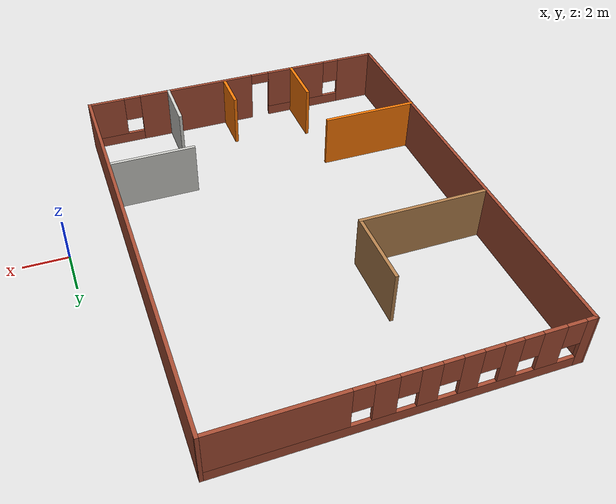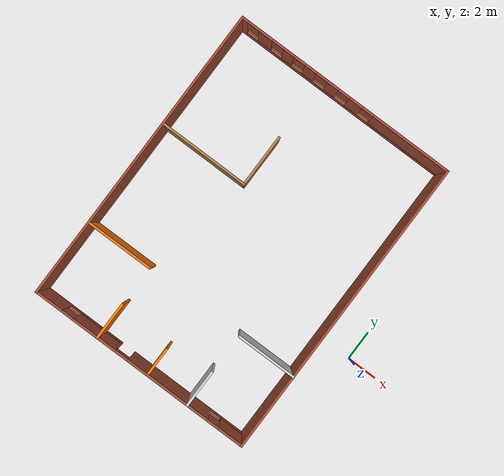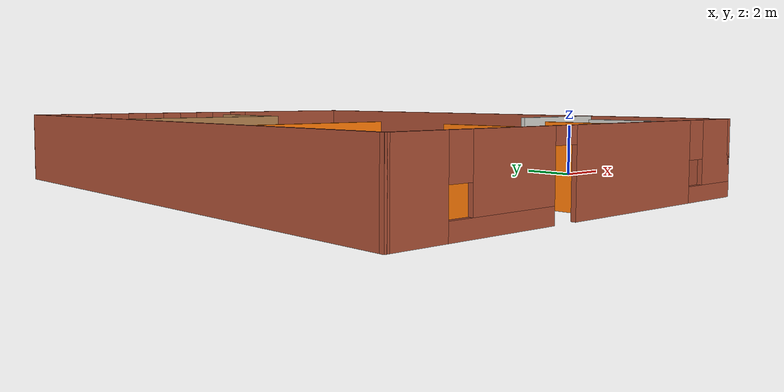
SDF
<?xml version='1.0'?>
<sdf version='1.6'>
  <model name='Apartment'>
    <pose frame=''>-9.93307 2.27969 0 0 -0 0</pose>
    <link name='Wall_0'>
      <collision name='Wall_0_Collision'>
        <geometry>
          <box>
            <size>20 0.15 2.5</size>
          </box>
        </geometry>
        <pose frame=''>0 0 1.25 0 -0 0</pose>
      </collision>
      <visual name='Wall_0_Visual'>
        <pose frame=''>0 0 1.25 0 -0 0</pose>
        <geometry>
          <box>
            <size>20 0.15 2.5</size>
          </box>
        </geometry>
        <material>
          <script>
            <uri>file://media/materials/scripts/gazebo.material</uri>
            <name>Gazebo/Bricks</name>
          </script>
          <ambient>0.921569 0.807843 0.615686 1</ambient>
        </material>
        <meta>
          <layer>0</layer>
        </meta>
      </visual>
      <pose frame=''>-7.42433 0 0 0 -0 1.57073</pose>
    </link>
    <link name='Wall_12'>
      <collision name='Wall_12_Collision'>
        <geometry>
          <box>
            <size>2.5 0.15 2.5</size>
          </box>
        </geometry>
        <pose frame=''>0 0 1.25 0 -0 0</pose>
      </collision>
      <visual name='Wall_12_Visual'>
        <pose frame=''>0 0 1.25 0 -0 0</pose>
        <geometry>
          <box>
            <size>2.5 0.15 2.5</size>
          </box>
        </geometry>
        <material>
          <script>
            <uri>file://media/materials/scripts/gazebo.material</uri>
            <name>Gazebo/Grey</name>
          </script>
          <ambient>0.996078 0.47451 0.0196078 1</ambient>
        </material>
        <meta>
          <layer>0</layer>
        </meta>
      </visual>
      <pose frame=''>-3.01391 -8.72413 0 0 0 -1.5708</pose>
    </link>
    <link name='Wall_20'>
      <collision name='Wall_20_Collision'>
        <geometry>
          <box>
            <size>2.5 0.15 2.5</size>
          </box>
        </geometry>
        <pose frame=''>0 0 1.25 0 -0 0</pose>
      </collision>
      <visual name='Wall_20_Visual'>
        <pose frame=''>0 0 1.25 0 -0 0</pose>
        <geometry>
          <box>
            <size>2.5 0.15 2.5</size>
          </box>
        </geometry>
        <material>
          <script>
            <uri>file://media/materials/scripts/gazebo.material</uri>
            <name>Gazebo/CeilingTiled</name>
          </script>
          <ambient>1 1 1 1</ambient>
        </material>
        <meta>
          <layer>0</layer>
        </meta>
      </visual>
      <pose frame=''>3.49742 -8.74753 0 0 -0 1.5708</pose>
    </link>
    <link name='Wall_22'>
      <collision name='Wall_22_Collision'>
        <geometry>
          <box>
            <size>4 0.15 2.5</size>
          </box>
        </geometry>
        <pose frame=''>0 0 1.25 0 -0 0</pose>
      </collision>
      <visual name='Wall_22_Visual'>
        <pose frame=''>0 0 1.25 0 -0 0</pose>
        <geometry>
          <box>
            <size>4 0.15 2.5</size>
          </box>
        </geometry>
        <material>
          <script>
            <uri>file://media/materials/scripts/gazebo.material</uri>
            <name>Gazebo/CeilingTiled</name>
          </script>
          <ambient>1 1 1 1</ambient>
        </material>
        <meta>
          <layer>0</layer>
        </meta>
      </visual>
      <pose frame=''>5.47445 -4.93437 0 0 -0 3.14159</pose>
    </link>
    <link name='Wall_24'>
      <collision name='Wall_24_Collision'>
        <geometry>
          <box>
            <size>2 0.15 2.5</size>
          </box>
        </geometry>
        <pose frame=''>0 0 1.25 0 -0 0</pose>
      </collision>
      <visual name='Wall_24_Visual'>
        <pose frame=''>0 0 1.25 0 -0 0</pose>
        <geometry>
          <box>
            <size>2 0.15 2.5</size>
          </box>
        </geometry>
        <material>
          <script>
            <uri>file://media/materials/scripts/gazebo.material</uri>
            <name>Gazebo/Grey</name>
          </script>
          <ambient>0.996078 0.47451 0.0196078 1</ambient>
        </material>
        <meta>
          <layer>0</layer>
        </meta>
      </visual>
      <pose frame=''>0.601066 -8.99753 0 0 -0 1.5708</pose>
    </link>
    <link name='Wall_26'>
      <collision name='Wall_26_Collision'>
        <geometry>
          <box>
            <size>4.5 0.15 2.5</size>
          </box>
        </geometry>
        <pose frame=''>0 0 1.25 0 -0 0</pose>
      </collision>
      <visual name='Wall_26_Visual'>
        <pose frame=''>0 0 1.25 0 -0 0</pose>
        <geometry>
          <box>
            <size>4.5 0.15 2.5</size>
          </box>
        </geometry>
        <material>
          <script>
            <uri>file://media/materials/scripts/gazebo.material</uri>
            <name>Gazebo/Grey</name>
          </script>
          <ambient>0.996078 0.47451 0.0196078 1</ambient>
        </material>
        <meta>
          <layer>0</layer>
        </meta>
      </visual>
      <pose frame=''>-5.22914 -4.89414 0 0 -0 0</pose>
    </link>
    <link name='Wall_29'>
      <collision name='Wall_29_Collision'>
        <geometry>
          <box>
            <size>6 0.15 2.5</size>
          </box>
        </geometry>
        <pose frame=''>0 0 1.25 0 -0 0</pose>
      </collision>
      <visual name='Wall_29_Visual'>
        <pose frame=''>0 0 1.25 0 -0 0</pose>
        <geometry>
          <box>
            <size>6 0.15 2.5</size>
          </box>
        </geometry>
        <material>
          <script>
            <uri>file://media/materials/scripts/gazebo.material</uri>
            <name>Gazebo/Wood</name>
          </script>
          <ambient>1 1 1 1</ambient>
        </material>
        <meta>
          <layer>0</layer>
        </meta>
      </visual>
      <pose frame=''>-4.49077 2.26536 0 0 -0 0</pose>
    </link>
    <link name='Wall_31'>
      <collision name='Wall_31_Collision'>
        <geometry>
          <box>
            <size>3.5 0.15 2.5</size>
          </box>
        </geometry>
        <pose frame=''>0 0 1.25 0 -0 0</pose>
      </collision>
      <visual name='Wall_31_Visual'>
        <pose frame=''>0 0 1.25 0 -0 0</pose>
        <geometry>
          <box>
            <size>3.5 0.15 2.5</size>
          </box>
        </geometry>
        <material>
          <script>
            <uri>file://media/materials/scripts/gazebo.material</uri>
            <name>Gazebo/Wood</name>
          </script>
          <ambient>1 1 1 1</ambient>
        </material>
        <meta>
          <layer>0</layer>
        </meta>
      </visual>
      <pose frame=''>-1.56577 3.94036 0 0 -0 1.5708</pose>
    </link>
    <link name='Wall_5'>
      <pose frame=''>2e-06 -9.925 0 0 -0 0</pose>
      <visual name='Wall_5_Visual_0'>
        <pose frame=''>-6.54582 0 1.25 0 -0 0</pose>
        <geometry>
          <box>
            <size>1.90835 0.15 2.5</size>
          </box>
        </geometry>
        <material>
          <script>
            <uri>file://media/materials/scripts/gazebo.material</uri>
            <name>Gazebo/Bricks</name>
          </script>
          <ambient>1 1 1 1</ambient>
        </material>
        <meta>
          <layer>0</layer>
        </meta>
      </visual>
      <collision name='Wall_5_Collision_0'>
        <geometry>
          <box>
            <size>1.90835 0.15 2.5</size>
          </box>
        </geometry>
        <pose frame=''>-6.54582 0 1.25 0 -0 0</pose>
      </collision>
      <visual name='Wall_5_Visual_1'>
        <pose frame=''>2.05413 0 1.25 0 -0 0</pose>
        <geometry>
          <box>
            <size>5.78748 0.15 2.5</size>
          </box>
        </geometry>
        <material>
          <script>
            <uri>file://media/materials/scripts/gazebo.material</uri>
            <name>Gazebo/Bricks</name>
          </script>
          <ambient>1 1 1 1</ambient>
        </material>
        <meta>
          <layer>0</layer>
        </meta>
      </visual>
      <collision name='Wall_5_Collision_1'>
        <geometry>
          <box>
            <size>5.78748 0.15 2.5</size>
          </box>
        </geometry>
        <pose frame=''>2.05413 0 1.25 0 -0 0</pose>
      </collision>
      <visual name='Wall_5_Visual_2'>
        <pose frame=''>-3.66563 0 0.25 0 -0 0</pose>
        <geometry>
          <box>
            <size>3.85203 0.15 0.5</size>
          </box>
        </geometry>
        <material>
          <script>
            <uri>file://media/materials/scripts/gazebo.material</uri>
            <name>Gazebo/Bricks</name>
          </script>
          <ambient>1 1 1 1</ambient>
        </material>
        <meta>
          <layer>0</layer>
        </meta>
      </visual>
      <collision name='Wall_5_Collision_2'>
        <geometry>
          <box>
            <size>3.85203 0.15 0.5</size>
          </box>
        </geometry>
        <pose frame=''>-3.66563 0 0.25 0 -0 0</pose>
      </collision>
      <visual name='Wall_5_Visual_3'>
        <pose frame=''>6.22393 0 0.25 0 -0 0</pose>
        <geometry>
          <box>
            <size>2.55213 0.15 0.5</size>
          </box>
        </geometry>
        <material>
          <script>
            <uri>file://media/materials/scripts/gazebo.material</uri>
            <name>Gazebo/Bricks</name>
          </script>
          <ambient>1 1 1 1</ambient>
        </material>
        <meta>
          <layer>0</layer>
        </meta>
      </visual>
      <collision name='Wall_5_Collision_3'>
        <geometry>
          <box>
            <size>2.55213 0.15 0.5</size>
          </box>
        </geometry>
        <pose frame=''>6.22393 0 0.25 0 -0 0</pose>
      </collision>
      <visual name='Wall_5_Visual_4'>
        <pose frame=''>-3.26563 0 1.5 0 -0 0</pose>
        <geometry>
          <box>
            <size>3.05203 0.15 2</size>
          </box>
        </geometry>
        <material>
          <script>
            <uri>file://media/materials/scripts/gazebo.material</uri>
            <name>Gazebo/Bricks</name>
          </script>
          <ambient>1 1 1 1</ambient>
        </material>
        <meta>
          <layer>0</layer>
        </meta>
      </visual>
      <collision name='Wall_5_Collision_4'>
        <geometry>
          <box>
            <size>3.05203 0.15 2</size>
          </box>
        </geometry>
        <pose frame=''>-3.26563 0 1.5 0 -0 0</pose>
      </collision>
      <visual name='Wall_5_Visual_5'>
        <pose frame=''>-3.26563 0 1.5 0 -0 0</pose>
        <geometry>
          <box>
            <size>3.05203 0.15 2</size>
          </box>
        </geometry>
        <material>
          <script>
            <uri>file://media/materials/scripts/gazebo.material</uri>
            <name>Gazebo/Bricks</name>
          </script>
          <ambient>1 1 1 1</ambient>
        </material>
        <meta>
          <layer>0</layer>
        </meta>
      </visual>
      <collision name='Wall_5_Collision_5'>
        <geometry>
          <box>
            <size>3.05203 0.15 2</size>
          </box>
        </geometry>
        <pose frame=''>-3.26563 0 1.5 0 -0 0</pose>
      </collision>
      <visual name='Wall_5_Visual_6'>
        <pose frame=''>6.62393 0 1.5 0 -0 0</pose>
        <geometry>
          <box>
            <size>1.75213 0.15 2</size>
          </box>
        </geometry>
        <material>
          <script>
            <uri>file://media/materials/scripts/gazebo.material</uri>
            <name>Gazebo/Bricks</name>
          </script>
          <ambient>1 1 1 1</ambient>
        </material>
        <meta>
          <layer>0</layer>
        </meta>
      </visual>
      <collision name='Wall_5_Collision_6'>
        <geometry>
          <box>
            <size>1.75213 0.15 2</size>
          </box>
        </geometry>
        <pose frame=''>6.62393 0 1.5 0 -0 0</pose>
      </collision>
      <visual name='Wall_5_Visual_7'>
        <pose frame=''>-5.19165 0 1.9 0 -0 0</pose>
        <geometry>
          <box>
            <size>0.8 0.15 1.2</size>
          </box>
        </geometry>
        <material>
          <script>
            <uri>file://media/materials/scripts/gazebo.material</uri>
            <name>Gazebo/Bricks</name>
          </script>
          <ambient>1 1 1 1</ambient>
        </material>
        <meta>
          <layer>0</layer>
        </meta>
      </visual>
      <collision name='Wall_5_Collision_7'>
        <geometry>
          <box>
            <size>0.8 0.15 1.2</size>
          </box>
        </geometry>
        <pose frame=''>-5.19165 0 1.9 0 -0 0</pose>
      </collision>
      <visual name='Wall_5_Visual_8'>
        <pose frame=''>5.34787 0 1.9 0 -0 0</pose>
        <geometry>
          <box>
            <size>0.8 0.15 1.2</size>
          </box>
        </geometry>
        <material>
          <script>
            <uri>file://media/materials/scripts/gazebo.material</uri>
            <name>Gazebo/Bricks</name>
          </script>
          <ambient>1 1 1 1</ambient>
        </material>
        <meta>
          <layer>0</layer>
        </meta>
      </visual>
      <collision name='Wall_5_Collision_8'>
        <geometry>
          <box>
            <size>0.8 0.15 1.2</size>
          </box>
        </geometry>
        <pose frame=''>5.34787 0 1.9 0 -0 0</pose>
      </collision>
      <visual name='Wall_5_Visual_9'>
        <pose frame=''>-1.28961 0 2.25 0 -0 0</pose>
        <geometry>
          <box>
            <size>0.9 0.15 0.5</size>
          </box>
        </geometry>
        <material>
          <script>
            <uri>file://media/materials/scripts/gazebo.material</uri>
            <name>Gazebo/Bricks</name>
          </script>
          <ambient>1 1 1 1</ambient>
        </material>
        <meta>
          <layer>0</layer>
        </meta>
      </visual>
      <collision name='Wall_5_Collision_9'>
        <geometry>
          <box>
            <size>0.9 0.15 0.5</size>
          </box>
        </geometry>
        <pose frame=''>-1.28961 0 2.25 0 -0 0</pose>
      </collision>
      <visual name='Wall_5_Visual_10'>
        <pose frame=''>-1.28961 0 2.25 0 -0 0</pose>
        <geometry>
          <box>
            <size>0.9 0.15 0.5</size>
          </box>
        </geometry>
        <material>
          <script>
            <uri>file://media/materials/scripts/gazebo.material</uri>
            <name>Gazebo/Bricks</name>
          </script>
          <ambient>1 1 1 1</ambient>
        </material>
        <meta>
          <layer>0</layer>
        </meta>
      </visual>
      <collision name='Wall_5_Collision_10'>
        <geometry>
          <box>
            <size>0.9 0.15 0.5</size>
          </box>
        </geometry>
        <pose frame=''>-1.28961 0 2.25 0 -0 0</pose>
      </collision>
    </link>
    <link name='Wall_7'>
      <collision name='Wall_7_Collision'>
        <geometry>
          <box>
            <size>20 0.15 2.5</size>
          </box>
        </geometry>
        <pose frame=''>0 0 1.25 0 -0 0</pose>
      </collision>
      <visual name='Wall_7_Visual'>
        <pose frame=''>0 0 1.25 0 -0 0</pose>
        <geometry>
          <box>
            <size>20 0.15 2.5</size>
          </box>
        </geometry>
        <material>
          <script>
            <uri>file://media/materials/scripts/gazebo.material</uri>
            <name>Gazebo/Bricks</name>
          </script>
          <ambient>1 1 1 1</ambient>
        </material>
        <meta>
          <layer>0</layer>
        </meta>
      </visual>
      <pose frame=''>7.425 0 0 0 -0 1.5708</pose>
    </link>
    <link name='Wall_9'>
      <pose frame=''>0.00067 9.925 0 0 -0 0</pose>
      <visual name='Wall_9_Visual_0'>
        <pose frame=''>-7.2498 0 1.25 0 -0 0</pose>
        <geometry>
          <box>
            <size>0.499068 0.15 2.5</size>
          </box>
        </geometry>
        <material>
          <script>
            <uri>file://media/materials/scripts/gazebo.material</uri>
            <name>Gazebo/Bricks</name>
          </script>
          <ambient>0.921569 0.807843 0.615686 1</ambient>
        </material>
        <meta>
          <layer>0</layer>
        </meta>
      </visual>
      <collision name='Wall_9_Collision_0'>
        <geometry>
          <box>
            <size>0.499068 0.15 2.5</size>
          </box>
        </geometry>
        <pose frame=''>-7.2498 0 1.25 0 -0 0</pose>
      </collision>
      <visual name='Wall_9_Visual_1'>
        <pose frame=''>0.249534 0 0.25 0 -0 0</pose>
        <geometry>
          <box>
            <size>14.4996 0.15 0.5</size>
          </box>
        </geometry>
        <material>
          <script>
            <uri>file://media/materials/scripts/gazebo.material</uri>
            <name>Gazebo/Bricks</name>
          </script>
          <ambient>0.921569 0.807843 0.615686 1</ambient>
        </material>
        <meta>
          <layer>0</layer>
        </meta>
      </visual>
      <collision name='Wall_9_Collision_1'>
        <geometry>
          <box>
            <size>14.4996 0.15 0.5</size>
          </box>
        </geometry>
        <pose frame=''>0.249534 0 0.25 0 -0 0</pose>
      </collision>
      <visual name='Wall_9_Visual_2'>
        <pose frame=''>-5.71527 0 1.5 0 -0 0</pose>
        <geometry>
          <box>
            <size>0.969994 0.15 2</size>
          </box>
        </geometry>
        <material>
          <script>
            <uri>file://media/materials/scripts/gazebo.material</uri>
            <name>Gazebo/Bricks</name>
          </script>
          <ambient>0.921569 0.807843 0.615686 1</ambient>
        </material>
        <meta>
          <layer>0</layer>
        </meta>
      </visual>
      <collision name='Wall_9_Collision_2'>
        <geometry>
          <box>
            <size>0.969994 0.15 2</size>
          </box>
        </geometry>
        <pose frame=''>-5.71527 0 1.5 0 -0 0</pose>
      </collision>
      <visual name='Wall_9_Visual_3'>
        <pose frame=''>-4.04584 0 1.5 0 -0 0</pose>
        <geometry>
          <box>
            <size>0.768859 0.15 2</size>
          </box>
        </geometry>
        <material>
          <script>
            <uri>file://media/materials/scripts/gazebo.material</uri>
            <name>Gazebo/Bricks</name>
          </script>
          <ambient>0.921569 0.807843 0.615686 1</ambient>
        </material>
        <meta>
          <layer>0</layer>
        </meta>
      </visual>
      <collision name='Wall_9_Collision_3'>
        <geometry>
          <box>
            <size>0.768859 0.15 2</size>
          </box>
        </geometry>
        <pose frame=''>-4.04584 0 1.5 0 -0 0</pose>
      </collision>
      <visual name='Wall_9_Visual_4'>
        <pose frame=''>-2.45687 0 1.5 0 -0 0</pose>
        <geometry>
          <box>
            <size>0.809085 0.15 2</size>
          </box>
        </geometry>
        <material>
          <script>
            <uri>file://media/materials/scripts/gazebo.material</uri>
            <name>Gazebo/Bricks</name>
          </script>
          <ambient>0.921569 0.807843 0.615686 1</ambient>
        </material>
        <meta>
          <layer>0</layer>
        </meta>
      </visual>
      <collision name='Wall_9_Collision_4'>
        <geometry>
          <box>
            <size>0.809085 0.15 2</size>
          </box>
        </geometry>
        <pose frame=''>-2.45687 0 1.5 0 -0 0</pose>
      </collision>
      <visual name='Wall_9_Visual_5'>
        <pose frame=''>-0.847783 0 1.5 0 -0 0</pose>
        <geometry>
          <box>
            <size>0.809086 0.15 2</size>
          </box>
        </geometry>
        <material>
          <script>
            <uri>file://media/materials/scripts/gazebo.material</uri>
            <name>Gazebo/Bricks</name>
          </script>
          <ambient>0.921569 0.807843 0.615686 1</ambient>
        </material>
        <meta>
          <layer>0</layer>
        </meta>
      </visual>
      <collision name='Wall_9_Collision_5'>
        <geometry>
          <box>
            <size>0.809086 0.15 2</size>
          </box>
        </geometry>
        <pose frame=''>-0.847783 0 1.5 0 -0 0</pose>
      </collision>
      <visual name='Wall_9_Visual_6'>
        <pose frame=''>0.821644 0 1.5 0 -0 0</pose>
        <geometry>
          <box>
            <size>0.929767 0.15 2</size>
          </box>
        </geometry>
        <material>
          <script>
            <uri>file://media/materials/scripts/gazebo.material</uri>
            <name>Gazebo/Bricks</name>
          </script>
          <ambient>0.921569 0.807843 0.615686 1</ambient>
        </material>
        <meta>
          <layer>0</layer>
        </meta>
      </visual>
      <collision name='Wall_9_Collision_6'>
        <geometry>
          <box>
            <size>0.929767 0.15 2</size>
          </box>
        </geometry>
        <pose frame=''>0.821644 0 1.5 0 -0 0</pose>
      </collision>
      <visual name='Wall_9_Visual_7'>
        <pose frame=''>4.79293 0 1.5 0 -0 0</pose>
        <geometry>
          <box>
            <size>5.4128 0.15 2</size>
          </box>
        </geometry>
        <material>
          <script>
            <uri>file://media/materials/scripts/gazebo.material</uri>
            <name>Gazebo/Bricks</name>
          </script>
          <ambient>0.921569 0.807843 0.615686 1</ambient>
        </material>
        <meta>
          <layer>0</layer>
        </meta>
      </visual>
      <collision name='Wall_9_Collision_7'>
        <geometry>
          <box>
            <size>5.4128 0.15 2</size>
          </box>
        </geometry>
        <pose frame=''>4.79293 0 1.5 0 -0 0</pose>
      </collision>
      <visual name='Wall_9_Visual_8'>
        <pose frame=''>-6.60026 0 1.9 0 -0 0</pose>
        <geometry>
          <box>
            <size>0.8 0.15 1.2</size>
          </box>
        </geometry>
        <material>
          <script>
            <uri>file://media/materials/scripts/gazebo.material</uri>
            <name>Gazebo/Bricks</name>
          </script>
          <ambient>0.921569 0.807843 0.615686 1</ambient>
        </material>
        <meta>
          <layer>0</layer>
        </meta>
      </visual>
      <collision name='Wall_9_Collision_8'>
        <geometry>
          <box>
            <size>0.8 0.15 1.2</size>
          </box>
        </geometry>
        <pose frame=''>-6.60026 0 1.9 0 -0 0</pose>
      </collision>
      <visual name='Wall_9_Visual_9'>
        <pose frame=''>-4.83027 0 1.9 0 -0 0</pose>
        <geometry>
          <box>
            <size>0.8 0.15 1.2</size>
          </box>
        </geometry>
        <material>
          <script>
            <uri>file://media/materials/scripts/gazebo.material</uri>
            <name>Gazebo/Bricks</name>
          </script>
          <ambient>0.921569 0.807843 0.615686 1</ambient>
        </material>
        <meta>
          <layer>0</layer>
        </meta>
      </visual>
      <collision name='Wall_9_Collision_9'>
        <geometry>
          <box>
            <size>0.8 0.15 1.2</size>
          </box>
        </geometry>
        <pose frame=''>-4.83027 0 1.9 0 -0 0</pose>
      </collision>
      <visual name='Wall_9_Visual_10'>
        <pose frame=''>-3.26141 0 1.9 0 -0 0</pose>
        <geometry>
          <box>
            <size>0.8 0.15 1.2</size>
          </box>
        </geometry>
        <material>
          <script>
            <uri>file://media/materials/scripts/gazebo.material</uri>
            <name>Gazebo/Bricks</name>
          </script>
          <ambient>0.921569 0.807843 0.615686 1</ambient>
        </material>
        <meta>
          <layer>0</layer>
        </meta>
      </visual>
      <collision name='Wall_9_Collision_10'>
        <geometry>
          <box>
            <size>0.8 0.15 1.2</size>
          </box>
        </geometry>
        <pose frame=''>-3.26141 0 1.9 0 -0 0</pose>
      </collision>
      <visual name='Wall_9_Visual_11'>
        <pose frame=''>-1.65233 0 1.9 0 -0 0</pose>
        <geometry>
          <box>
            <size>0.8 0.15 1.2</size>
          </box>
        </geometry>
        <material>
          <script>
            <uri>file://media/materials/scripts/gazebo.material</uri>
            <name>Gazebo/Bricks</name>
          </script>
          <ambient>0.921569 0.807843 0.615686 1</ambient>
        </material>
        <meta>
          <layer>0</layer>
        </meta>
      </visual>
      <collision name='Wall_9_Collision_11'>
        <geometry>
          <box>
            <size>0.8 0.15 1.2</size>
          </box>
        </geometry>
        <pose frame=''>-1.65233 0 1.9 0 -0 0</pose>
      </collision>
      <visual name='Wall_9_Visual_12'>
        <pose frame=''>-0.04324 0 1.9 0 -0 0</pose>
        <geometry>
          <box>
            <size>0.8 0.15 1.2</size>
          </box>
        </geometry>
        <material>
          <script>
            <uri>file://media/materials/scripts/gazebo.material</uri>
            <name>Gazebo/Bricks</name>
          </script>
          <ambient>0.921569 0.807843 0.615686 1</ambient>
        </material>
        <meta>
          <layer>0</layer>
        </meta>
      </visual>
      <collision name='Wall_9_Collision_12'>
        <geometry>
          <box>
            <size>0.8 0.15 1.2</size>
          </box>
        </geometry>
        <pose frame=''>-0.04324 0 1.9 0 -0 0</pose>
      </collision>
      <visual name='Wall_9_Visual_13'>
        <pose frame=''>1.68653 0 1.9 0 -0 0</pose>
        <geometry>
          <box>
            <size>0.8 0.15 1.2</size>
          </box>
        </geometry>
        <material>
          <script>
            <uri>file://media/materials/scripts/gazebo.material</uri>
            <name>Gazebo/Bricks</name>
          </script>
          <ambient>0.921569 0.807843 0.615686 1</ambient>
        </material>
        <meta>
          <layer>0</layer>
        </meta>
      </visual>
      <collision name='Wall_9_Collision_13'>
        <geometry>
          <box>
            <size>0.8 0.15 1.2</size>
          </box>
        </geometry>
        <pose frame=''>1.68653 0 1.9 0 -0 0</pose>
      </collision>
    </link>
    <static>1</static>
  </model>
</sdf>
